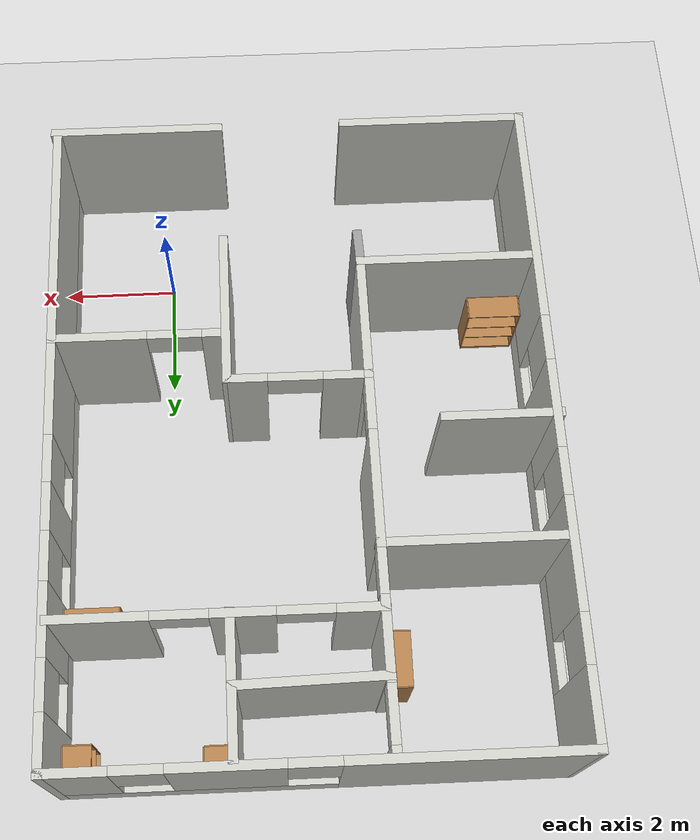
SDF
<sdf version="1.7">
 <world name="default">
  <light name="sun" type="directional">
   <pose>0 0 10 0 -0 0</pose>
   <diffuse>0.8 0.8 0.8 1</diffuse>
   <specular>0.2 0.2 0.2 1</specular>
   <attenuation>
    <range>1000</range>
    <constant>0.9</constant>
    <linear>0.01</linear>
    <quadratic>0.001</quadratic>
   </attenuation>
   <direction>-0.5 0.1 -0.9</direction>
   <spot><inner_angle>0</inner_angle><outer_angle>0</outer_angle><falloff>0</falloff></spot>
  </light>
  <model name="ground_plane">
   <static>1</static>
   <link name="link">
    <collision name="collision">
     <geometry><plane><normal>0 0 1</normal><size>100 100</size></plane></geometry>
     <surface><friction><ode><mu>100</mu><mu2>50</mu2></ode></friction></surface>
    </collision>
    <visual name="visual">
     <cast_shadows>0</cast_shadows>
     <geometry><plane><normal>0 0 1</normal><size>100 100</size></plane></geometry>
     <material>
      <script><uri>file://media/materials/scripts/gazebo.material</uri><name>Gazebo/Grey</name></script>
     </material>
    </visual>
   </link>
  </model>
  <gravity>0 0 -9.8</gravity>
  <magnetic_field>6e-06 2.3e-05 -4.2e-05</magnetic_field>
  <atmosphere type="adiabatic"/>
  <physics type="ode">
   <max_step_size>0.001</max_step_size>
   <real_time_factor>1</real_time_factor>
   <real_time_update_rate>1000</real_time_update_rate>
  </physics>
  <scene><ambient>0.4 0.4 0.4 1</ambient><background>0.7 0.7 0.7 1</background><shadows>1</shadows></scene>
  <audio><device>default</device></audio>
  <spherical_coordinates>
   <surface_model>EARTH_WGS84</surface_model>
   <latitude_deg>0</latitude_deg>
   <longitude_deg>0</longitude_deg>
   <elevation>0</elevation>
   <heading_deg>0</heading_deg>
  </spherical_coordinates>
  <model name="myhouse">
   <pose>-2.24113 3.59158 0 0 -0 0</pose>
   <link name="Wall_10">
    <collision name="Wall_10_Collision">
     <geometry><box><size>3.25 0.15 2.5</size></box></geometry>
     <pose>0 0 1.25 0 -0 0</pose>
    </collision>
    <visual name="Wall_10_Visual">
     <pose>0 0 1.25 0 -0 0</pose>
     <geometry><box><size>3.25 0.15 2.5</size></box></geometry>
     <material>
      <script><uri>file://media/materials/scripts/gazebo.material</uri><name>Gazebo/CeilingTiled</name></script>
      <ambient>1 1 1 1</ambient>
     </material>
     <meta><layer>0</layer></meta>
    </visual>
    <pose>-2.51699 -5.49294 0 0 -0 0</pose>
   </link>
   <link name="Wall_12">
    <collision name="Wall_12_Collision">
     <geometry><box><size>3 0.15 2.5</size></box></geometry>
     <pose>0 0 1.25 0 -0 0</pose>
    </collision>
    <visual name="Wall_12_Visual">
     <pose>0 0 1.25 0 -0 0</pose>
     <geometry><box><size>3 0.15 2.5</size></box></geometry>
     <material>
      <script><uri>file://media/materials/scripts/gazebo.material</uri><name>Gazebo/CeilingTiled</name></script>
      <ambient>1 1 1 1</ambient>
     </material>
     <meta><layer>0</layer></meta>
    </visual>
    <pose>2.67805 -5.49294 0 0 -0 0</pose>
   </link>
   <link name="Wall_16">
    <pose>0.009607 5.49294 0 0 -0 0</pose>
    <visual name="Wall_16_Visual_0">
     <pose>-2.22803 0 1.25 0 -0 0</pose>
     <geometry><box><size>3.79393 0.15 2.5</size></box></geometry>
     <material>
      <script><uri>file://media/materials/scripts/gazebo.material</uri><name>Gazebo/CeilingTiled</name></script>
      <ambient>1 1 1 1</ambient>
     </material>
     <meta><layer>0</layer></meta>
    </visual>
    <collision name="Wall_16_Collision_0">
     <geometry><box><size>3.79393 0.15 2.5</size></box></geometry>
     <pose>-2.22803 0 1.25 0 -0 0</pose>
    </collision>
    <visual name="Wall_16_Visual_1">
     <pose>1.89697 0 0.25 0 -0 0</pose>
     <geometry><box><size>4.45607 0.15 0.5</size></box></geometry>
     <material>
      <script><uri>file://media/materials/scripts/gazebo.material</uri><name>Gazebo/CeilingTiled</name></script>
      <ambient>1 1 1 1</ambient>
     </material>
     <meta><layer>0</layer></meta>
    </visual>
    <collision name="Wall_16_Collision_1">
     <geometry><box><size>4.45607 0.15 0.5</size></box></geometry>
     <pose>1.89697 0 0.25 0 -0 0</pose>
    </collision>
    <visual name="Wall_16_Visual_2">
     <pose>1.35904 0 1.5 0 -0 0</pose>
     <geometry><box><size>1.78022 0.15 2</size></box></geometry>
     <material>
      <script><uri>file://media/materials/scripts/gazebo.material</uri><name>Gazebo/CeilingTiled</name></script>
      <ambient>1 1 1 1</ambient>
     </material>
     <meta><layer>0</layer></meta>
    </visual>
    <collision name="Wall_16_Collision_2">
     <geometry><box><size>1.78022 0.15 2</size></box></geometry>
     <pose>1.35904 0 1.5 0 -0 0</pose>
    </collision>
    <visual name="Wall_16_Visual_3">
     <pose>3.58708 0 1.5 0 -0 0</pose>
     <geometry><box><size>1.07585 0.15 2</size></box></geometry>
     <material>
      <script><uri>file://media/materials/scripts/gazebo.material</uri><name>Gazebo/CeilingTiled</name></script>
      <ambient>1 1 1 1</ambient>
     </material>
     <meta><layer>0</layer></meta>
    </visual>
    <collision name="Wall_16_Collision_3">
     <geometry><box><size>1.07585 0.15 2</size></box></geometry>
     <pose>3.58708 0 1.5 0 -0 0</pose>
    </collision>
    <visual name="Wall_16_Visual_4">
     <pose>0.068933 0 1.9 0 -0 0</pose>
     <geometry><box><size>0.8 0.15 1.2</size></box></geometry>
     <material>
      <script><uri>file://media/materials/scripts/gazebo.material</uri><name>Gazebo/CeilingTiled</name></script>
      <ambient>1 1 1 1</ambient>
     </material>
     <meta><layer>0</layer></meta>
    </visual>
    <collision name="Wall_16_Collision_4">
     <geometry><box><size>0.8 0.15 1.2</size></box></geometry>
     <pose>0.068933 0 1.9 0 -0 0</pose>
    </collision>
    <visual name="Wall_16_Visual_5">
     <pose>2.64915 0 1.9 0 -0 0</pose>
     <geometry><box><size>0.8 0.15 1.2</size></box></geometry>
     <material>
      <script><uri>file://media/materials/scripts/gazebo.material</uri><name>Gazebo/CeilingTiled</name></script>
      <ambient>1 1 1 1</ambient>
     </material>
     <meta><layer>0</layer></meta>
    </visual>
    <collision name="Wall_16_Collision_5">
     <geometry><box><size>0.8 0.15 1.2</size></box></geometry>
     <pose>2.64915 0 1.9 0 -0 0</pose>
    </collision>
   </link>
   <link name="Wall_17">
    <pose>4.05961 0.067941 0 0 -0 -1.5708</pose>
    <visual name="Wall_17_Visual_0">
     <pose>-5.02252 0 1.25 0 -0 0</pose>
     <geometry><box><size>0.954962 0.15 2.5</size></box></geometry>
     <material>
      <script><uri>file://media/materials/scripts/gazebo.material</uri><name>Gazebo/CeilingTiled</name></script>
      <ambient>1 1 1 1</ambient>
     </material>
     <meta><layer>0</layer></meta>
    </visual>
    <collision name="Wall_17_Collision_0">
     <geometry><box><size>0.954962 0.15 2.5</size></box></geometry>
     <pose>-5.02252 0 1.25 0 -0 0</pose>
    </collision>
    <visual name="Wall_17_Visual_1">
     <pose>0.477481 0 0.25 0 -0 0</pose>
     <geometry><box><size>10.045 0.15 0.5</size></box></geometry>
     <material>
      <script><uri>file://media/materials/scripts/gazebo.material</uri><name>Gazebo/CeilingTiled</name></script>
      <ambient>1 1 1 1</ambient>
     </material>
     <meta><layer>0</layer></meta>
    </visual>
    <collision name="Wall_17_Collision_1">
     <geometry><box><size>10.045 0.15 0.5</size></box></geometry>
     <pose>0.477481 0 0.25 0 -0 0</pose>
    </collision>
    <visual name="Wall_17_Visual_2">
     <pose>-3.16083 0 1.5 0 -0 0</pose>
     <geometry><box><size>1.16841 0.15 2</size></box></geometry>
     <material>
      <script><uri>file://media/materials/scripts/gazebo.material</uri><name>Gazebo/CeilingTiled</name></script>
      <ambient>1 1 1 1</ambient>
     </material>
     <meta><layer>0</layer></meta>
    </visual>
    <collision name="Wall_17_Collision_2">
     <geometry><box><size>1.16841 0.15 2</size></box></geometry>
     <pose>-3.16083 0 1.5 0 -0 0</pose>
    </collision>
    <visual name="Wall_17_Visual_3">
     <pose>-1.37862 0 1.5 0 -0 0</pose>
     <geometry><box><size>0.796012 0.15 2</size></box></geometry>
     <material>
      <script><uri>file://media/materials/scripts/gazebo.material</uri><name>Gazebo/CeilingTiled</name></script>
      <ambient>1 1 1 1</ambient>
     </material>
     <meta><layer>0</layer></meta>
    </visual>
    <collision name="Wall_17_Collision_3">
     <geometry><box><size>0.796012 0.15 2</size></box></geometry>
     <pose>-1.37862 0 1.5 0 -0 0</pose>
    </collision>
    <visual name="Wall_17_Visual_4">
     <pose>2.65969 0 1.5 0 -0 0</pose>
     <geometry><box><size>5.68061 0.15 2</size></box></geometry>
     <material>
      <script><uri>file://media/materials/scripts/gazebo.material</uri><name>Gazebo/CeilingTiled</name></script>
      <ambient>1 1 1 1</ambient>
     </material>
     <meta><layer>0</layer></meta>
    </visual>
    <collision name="Wall_17_Collision_4">
     <geometry><box><size>5.68061 0.15 2</size></box></geometry>
     <pose>2.65969 0 1.5 0 -0 0</pose>
    </collision>
    <visual name="Wall_17_Visual_5">
     <pose>-4.14504 0 1.9 0 -0 0</pose>
     <geometry><box><size>0.8 0.15 1.2</size></box></geometry>
     <material>
      <script><uri>file://media/materials/scripts/gazebo.material</uri><name>Gazebo/CeilingTiled</name></script>
      <ambient>1 1 1 1</ambient>
     </material>
     <meta><layer>0</layer></meta>
    </visual>
    <collision name="Wall_17_Collision_5">
     <geometry><box><size>0.8 0.15 1.2</size></box></geometry>
     <pose>-4.14504 0 1.9 0 -0 0</pose>
    </collision>
    <visual name="Wall_17_Visual_6">
     <pose>-2.17662 0 1.9 0 -0 0</pose>
     <geometry><box><size>0.8 0.15 1.2</size></box></geometry>
     <material>
      <script><uri>file://media/materials/scripts/gazebo.material</uri><name>Gazebo/CeilingTiled</name></script>
      <ambient>1 1 1 1</ambient>
     </material>
     <meta><layer>0</layer></meta>
    </visual>
    <collision name="Wall_17_Collision_6">
     <geometry><box><size>0.8 0.15 1.2</size></box></geometry>
     <pose>-2.17662 0 1.9 0 -0 0</pose>
    </collision>
    <visual name="Wall_17_Visual_7">
     <pose>-0.580611 0 1.9 0 -0 0</pose>
     <geometry><box><size>0.8 0.15 1.2</size></box></geometry>
     <material>
      <script><uri>file://media/materials/scripts/gazebo.material</uri><name>Gazebo/CeilingTiled</name></script>
      <ambient>1 1 1 1</ambient>
     </material>
     <meta><layer>0</layer></meta>
    </visual>
    <collision name="Wall_17_Collision_7">
     <geometry><box><size>0.8 0.15 1.2</size></box></geometry>
     <pose>-0.580611 0 1.9 0 -0 0</pose>
    </collision>
   </link>
   <link name="Wall_19">
    <collision name="Wall_19_Collision">
     <geometry><box><size>3.12681 0.15 2.5</size></box></geometry>
     <pose>0 0 1.25 0 -0 0</pose>
    </collision>
    <visual name="Wall_19_Visual">
     <pose>0 0 1.25 0 -0 0</pose>
     <geometry><box><size>3.12681 0.15 2.5</size></box></geometry>
     <material>
      <script><uri>file://media/materials/scripts/gazebo.material</uri><name>Gazebo/CeilingTiled</name></script>
      <ambient>1 1 1 1</ambient>
     </material>
     <meta><layer>0</layer></meta>
    </visual>
    <pose>-2.57442 -2.6922 0 0 -0 0</pose>
   </link>
   <link name="Wall_21">
    <collision name="Wall_21_Collision">
     <geometry><box><size>2.25 0.15 2.5</size></box></geometry>
     <pose>0 0 1.25 0 -0 0</pose>
    </collision>
    <visual name="Wall_21_Visual">
     <pose>0 0 1.25 0 -0 0</pose>
     <geometry><box><size>2.25 0.15 2.5</size></box></geometry>
     <material>
      <script><uri>file://media/materials/scripts/gazebo.material</uri><name>Gazebo/CeilingTiled</name></script>
      <ambient>1 1 1 1</ambient>
     </material>
     <meta><layer>0</layer></meta>
    </visual>
    <pose>-1.08601 -1.6422 0 0 -0 1.5708</pose>
   </link>
   <link name="Wall_23">
    <collision name="Wall_23_Collision">
     <geometry><box><size>2 0.15 2.5</size></box></geometry>
     <pose>0 0 1.25 0 -0 0</pose>
    </collision>
    <visual name="Wall_23_Visual">
     <pose>0 0 1.25 0 -0 0</pose>
     <geometry><box><size>2 0.15 2.5</size></box></geometry>
     <material>
      <script><uri>file://media/materials/scripts/gazebo.material</uri><name>Gazebo/CeilingTiled</name></script>
      <ambient>1 1 1 1</ambient>
     </material>
     <meta><layer>0</layer></meta>
    </visual>
    <pose>-3.17805 0.204152 0 0 -0 0</pose>
   </link>
   <link name="Wall_25">
    <collision name="Wall_25_Collision">
     <geometry><box><size>3 0.15 2.5</size></box></geometry>
     <pose>0 0 1.25 0 -0 0</pose>
    </collision>
    <visual name="Wall_25_Visual">
     <pose>0 0 1.25 0 -0 0</pose>
     <geometry><box><size>3 0.15 2.5</size></box></geometry>
     <material>
      <script><uri>file://media/materials/scripts/gazebo.material</uri><name>Gazebo/CeilingTiled</name></script>
      <ambient>1 1 1 1</ambient>
     </material>
     <meta><layer>0</layer></meta>
    </visual>
    <pose>-2.51101 2.25574 0 0 -0 0</pose>
   </link>
   <link name="Wall_27">
    <pose>-1.08601 0.831767 0 0 -0 -1.5708</pose>
    <visual name="Wall_27_Visual_0">
     <pose>-0.519882 0 1.25 0 -0 0</pose>
     <geometry><box><size>1.95817 0.15 2.5</size></box></geometry>
     <material>
      <script><uri>file://media/materials/scripts/gazebo.material</uri><name>Gazebo/CeilingTiled</name></script>
      <ambient>1 1 1 1</ambient>
     </material>
     <meta><layer>0</layer></meta>
    </visual>
    <collision name="Wall_27_Collision_0">
     <geometry><box><size>1.95817 0.15 2.5</size></box></geometry>
     <pose>-0.519882 0 1.25 0 -0 0</pose>
    </collision>
    <visual name="Wall_27_Visual_1">
     <pose>1.42909 0 1.25 0 -0 0</pose>
     <geometry><box><size>0.139764 0.15 2.5</size></box></geometry>
     <material>
      <script><uri>file://media/materials/scripts/gazebo.material</uri><name>Gazebo/CeilingTiled</name></script>
      <ambient>1 1 1 1</ambient>
     </material>
     <meta><layer>0</layer></meta>
    </visual>
    <collision name="Wall_27_Collision_1">
     <geometry><box><size>0.139764 0.15 2.5</size></box></geometry>
     <pose>1.42909 0 1.25 0 -0 0</pose>
    </collision>
    <visual name="Wall_27_Visual_2">
     <pose>0.909205 0 2.25 0 -0 0</pose>
     <geometry><box><size>0.9 0.15 0.5</size></box></geometry>
     <material>
      <script><uri>file://media/materials/scripts/gazebo.material</uri><name>Gazebo/CeilingTiled</name></script>
      <ambient>1 1 1 1</ambient>
     </material>
     <meta><layer>0</layer></meta>
    </visual>
    <collision name="Wall_27_Collision_2">
     <geometry><box><size>0.9 0.15 0.5</size></box></geometry>
     <pose>0.909205 0 2.25 0 -0 0</pose>
    </collision>
   </link>
   <link name="Wall_29">
    <collision name="Wall_29_Collision">
     <geometry><box><size>0.67334 0.15 2.5</size></box></geometry>
     <pose>0 0 1.25 0 -0 0</pose>
    </collision>
    <visual name="Wall_29_Visual">
     <pose>0 0 1.25 0 -0 0</pose>
     <geometry><box><size>0.67334 0.15 2.5</size></box></geometry>
     <material>
      <script><uri>file://media/materials/scripts/gazebo.material</uri><name>Gazebo/Grey</name></script>
      <ambient>1 1 1 1</ambient>
     </material>
     <meta><layer>0</layer></meta>
    </visual>
    <pose>-1.07595 -2.95368 0 0 -0 -1.53235</pose>
   </link>
   <link name="Wall_31">
    <pose>0.060463 -0.596297 0 0 -0 -0.003571</pose>
    <visual name="Wall_31_Visual_0">
     <pose>-0.815584 0 1.25 0 -0 0</pose>
     <geometry><box><size>0.811794 0.15 2.5</size></box></geometry>
     <material>
      <script><uri>file://media/materials/scripts/gazebo.material</uri><name>Gazebo/CeilingTiled</name></script>
      <ambient>1 1 1 1</ambient>
     </material>
     <meta><layer>0</layer></meta>
    </visual>
    <collision name="Wall_31_Collision_0">
     <geometry><box><size>0.811794 0.15 2.5</size></box></geometry>
     <pose>-0.815584 0 1.25 0 -0 0</pose>
    </collision>
    <visual name="Wall_31_Visual_1">
     <pose>0.855897 0 1.25 0 -0 0</pose>
     <geometry><box><size>0.731168 0.15 2.5</size></box></geometry>
     <material>
      <script><uri>file://media/materials/scripts/gazebo.material</uri><name>Gazebo/CeilingTiled</name></script>
      <ambient>1 1 1 1</ambient>
     </material>
     <meta><layer>0</layer></meta>
    </visual>
    <collision name="Wall_31_Collision_1">
     <geometry><box><size>0.731168 0.15 2.5</size></box></geometry>
     <pose>0.855897 0 1.25 0 -0 0</pose>
    </collision>
    <visual name="Wall_31_Visual_2">
     <pose>0.040313 0 2.25 0 -0 0</pose>
     <geometry><box><size>0.9 0.15 0.5</size></box></geometry>
     <material>
      <script><uri>file://media/materials/scripts/gazebo.material</uri><name>Gazebo/CeilingTiled</name></script>
      <ambient>1 1 1 1</ambient>
     </material>
     <meta><layer>0</layer></meta>
    </visual>
    <collision name="Wall_31_Collision_2">
     <geometry><box><size>0.9 0.15 0.5</size></box></geometry>
     <pose>0.040313 0 2.25 0 -0 0</pose>
    </collision>
   </link>
   <link name="Wall_32">
    <collision name="Wall_32_Collision">
     <geometry><box><size>2.75 0.15 2.5</size></box></geometry>
     <pose>0 0 1.25 0 -0 0</pose>
    </collision>
    <visual name="Wall_32_Visual">
     <pose>0 0 1.25 0 -0 0</pose>
     <geometry><box><size>2.75 0.15 2.5</size></box></geometry>
     <material>
      <script><uri>file://media/materials/scripts/gazebo.material</uri><name>Gazebo/CeilingTiled</name></script>
      <ambient>1 1 1 1</ambient>
     </material>
     <meta><layer>0</layer></meta>
    </visual>
    <pose>1.20694 -1.90039 0 0 -0 -1.5708</pose>
   </link>
   <link name="Wall_35">
    <pose>2.63194 -1.44516 0 0 -0 0</pose>
    <visual name="Wall_35_Visual_0">
     <pose>-1.26511 0 1.25 0 -0 0</pose>
     <geometry><box><size>0.46977 0.15 2.5</size></box></geometry>
     <material>
      <script><uri>file://media/materials/scripts/gazebo.material</uri><name>Gazebo/CeilingTiled</name></script>
      <ambient>1 1 1 1</ambient>
     </material>
     <meta><layer>0</layer></meta>
    </visual>
    <collision name="Wall_35_Collision_0">
     <geometry><box><size>0.46977 0.15 2.5</size></box></geometry>
     <pose>-1.26511 0 1.25 0 -0 0</pose>
    </collision>
    <visual name="Wall_35_Visual_1">
     <pose>0.684885 0 1.25 0 -0 0</pose>
     <geometry><box><size>1.63023 0.15 2.5</size></box></geometry>
     <material>
      <script><uri>file://media/materials/scripts/gazebo.material</uri><name>Gazebo/CeilingTiled</name></script>
      <ambient>1 1 1 1</ambient>
     </material>
     <meta><layer>0</layer></meta>
    </visual>
    <collision name="Wall_35_Collision_1">
     <geometry><box><size>1.63023 0.15 2.5</size></box></geometry>
     <pose>0.684885 0 1.25 0 -0 0</pose>
    </collision>
    <visual name="Wall_35_Visual_2">
     <pose>-0.58023 0 2.25 0 -0 0</pose>
     <geometry><box><size>0.9 0.15 0.5</size></box></geometry>
     <material>
      <script><uri>file://media/materials/scripts/gazebo.material</uri><name>Gazebo/CeilingTiled</name></script>
      <ambient>1 1 1 1</ambient>
     </material>
     <meta><layer>0</layer></meta>
    </visual>
    <collision name="Wall_35_Collision_2">
     <geometry><box><size>0.9 0.15 0.5</size></box></geometry>
     <pose>-0.58023 0 2.25 0 -0 0</pose>
    </collision>
   </link>
   <link name="Wall_37">
    <pose>-1.08894 3.87276 0 0 -0 -1.56899</pose>
    <visual name="Wall_37_Visual_0">
     <pose>-1.56033 0 1.25 0 -0 0</pose>
     <geometry><box><size>0.263404 0.15 2.5</size></box></geometry>
     <material>
      <script><uri>file://media/materials/scripts/gazebo.material</uri><name>Gazebo/CeilingTiled</name></script>
      <ambient>1 1 1 1</ambient>
     </material>
     <meta><layer>0</layer></meta>
    </visual>
    <collision name="Wall_37_Collision_0">
     <geometry><box><size>0.263404 0.15 2.5</size></box></geometry>
     <pose>-1.56033 0 1.25 0 -0 0</pose>
    </collision>
    <visual name="Wall_37_Visual_1">
     <pose>0.138557 0 1.25 0 -0 0</pose>
     <geometry><box><size>1.33437 0.15 2.5</size></box></geometry>
     <material>
      <script><uri>file://media/materials/scripts/gazebo.material</uri><name>Gazebo/CeilingTiled</name></script>
      <ambient>1 1 1 1</ambient>
     </material>
     <meta><layer>0</layer></meta>
    </visual>
    <collision name="Wall_37_Collision_1">
     <geometry><box><size>1.33437 0.15 2.5</size></box></geometry>
     <pose>0.138557 0 1.25 0 -0 0</pose>
    </collision>
    <visual name="Wall_37_Visual_2">
     <pose>-0.978625 0 2.25 0 -0 0</pose>
     <geometry><box><size>0.9 0.15 0.5</size></box></geometry>
     <material>
      <script><uri>file://media/materials/scripts/gazebo.material</uri><name>Gazebo/CeilingTiled</name></script>
      <ambient>1 1 1 1</ambient>
     </material>
     <meta><layer>0</layer></meta>
    </visual>
    <collision name="Wall_37_Collision_2">
     <geometry><box><size>0.9 0.15 0.5</size></box></geometry>
     <pose>-0.978625 0 2.25 0 -0 0</pose>
    </collision>
    <visual name="Wall_37_Visual_3">
     <pose>1.24888 0 2.25 0 -0 0</pose>
     <geometry><box><size>0.886289 0.15 0.5</size></box></geometry>
     <material>
      <script><uri>file://media/materials/scripts/gazebo.material</uri><name>Gazebo/CeilingTiled</name></script>
      <ambient>1 1 1 1</ambient>
     </material>
     <meta><layer>0</layer></meta>
    </visual>
    <collision name="Wall_37_Collision_3">
     <geometry><box><size>0.886289 0.15 0.5</size></box></geometry>
     <pose>1.24888 0 2.25 0 -0 0</pose>
    </collision>
   </link>
   <link name="Wall_39">
    <collision name="Wall_39_Collision">
     <geometry><box><size>2.50136 0.15 2.5</size></box></geometry>
     <pose>0 0 1.25 0 -0 0</pose>
    </collision>
    <visual name="Wall_39_Visual">
     <pose>0 0 1.25 0 -0 0</pose>
     <geometry><box><size>2.50136 0.15 2.5</size></box></geometry>
     <material>
      <script><uri>file://media/materials/scripts/gazebo.material</uri><name>Gazebo/CeilingTiled</name></script>
      <ambient>1 1 1 1</ambient>
     </material>
     <meta><layer>0</layer></meta>
    </visual>
    <pose>0.083364 4.31942 0 0 -0 0.022661</pose>
   </link>
   <link name="Wall_40">
    <collision name="Wall_40_Collision">
     <geometry><box><size>1.1968 0.15 2.5</size></box></geometry>
     <pose>0 0 1.25 0 -0 0</pose>
    </collision>
    <visual name="Wall_40_Visual">
     <pose>0 0 1.25 0 -0 0</pose>
     <geometry><box><size>1.1968 0.15 2.5</size></box></geometry>
     <material>
      <script><uri>file://media/materials/scripts/gazebo.material</uri><name>Gazebo/CeilingTiled</name></script>
      <ambient>1 1 1 1</ambient>
     </material>
     <meta><layer>0</layer></meta>
    </visual>
    <pose>1.25836 4.86942 0 0 -0 1.57124</pose>
   </link>
   <link name="Wall_46">
    <pose>1.45813 3.25537 0 0 -0 0</pose>
    <visual name="Wall_46_Visual_0">
     <pose>-2.214 0 1.25 0 -0 0</pose>
     <geometry><box><size>0.822009 0.15 2.5</size></box></geometry>
     <material>
      <script><uri>file://media/materials/scripts/gazebo.material</uri><name>Gazebo/CeilingTiled</name></script>
      <ambient>1 1 1 1</ambient>
     </material>
     <meta><layer>0</layer></meta>
    </visual>
    <collision name="Wall_46_Collision_0">
     <geometry><box><size>0.822009 0.15 2.5</size></box></geometry>
     <pose>-2.214 0 1.25 0 -0 0</pose>
    </collision>
    <visual name="Wall_46_Visual_1">
     <pose>-0.395384 0 1.25 0 -0 0</pose>
     <geometry><box><size>1.01521 0.15 2.5</size></box></geometry>
     <material>
      <script><uri>file://media/materials/scripts/gazebo.material</uri><name>Gazebo/CeilingTiled</name></script>
      <ambient>1 1 1 1</ambient>
     </material>
     <meta><layer>0</layer></meta>
    </visual>
    <collision name="Wall_46_Collision_1">
     <geometry><box><size>1.01521 0.15 2.5</size></box></geometry>
     <pose>-0.395384 0 1.25 0 -0 0</pose>
    </collision>
    <visual name="Wall_46_Visual_2">
     <pose>1.81861 0 1.25 0 -0 0</pose>
     <geometry><box><size>1.61278 0.15 2.5</size></box></geometry>
     <material>
      <script><uri>file://media/materials/scripts/gazebo.material</uri><name>Gazebo/CeilingTiled</name></script>
      <ambient>1 1 1 1</ambient>
     </material>
     <meta><layer>0</layer></meta>
    </visual>
    <collision name="Wall_46_Collision_2">
     <geometry><box><size>1.61278 0.15 2.5</size></box></geometry>
     <pose>1.81861 0 1.25 0 -0 0</pose>
    </collision>
    <visual name="Wall_46_Visual_3">
     <pose>-1.35299 0 2.25 0 -0 0</pose>
     <geometry><box><size>0.9 0.15 0.5</size></box></geometry>
     <material>
      <script><uri>file://media/materials/scripts/gazebo.material</uri><name>Gazebo/CeilingTiled</name></script>
      <ambient>1 1 1 1</ambient>
     </material>
     <meta><layer>0</layer></meta>
    </visual>
    <collision name="Wall_46_Collision_3">
     <geometry><box><size>0.9 0.15 0.5</size></box></geometry>
     <pose>-1.35299 0 2.25 0 -0 0</pose>
    </collision>
    <visual name="Wall_46_Visual_4">
     <pose>0.562223 0 2.25 0 -0 0</pose>
     <geometry><box><size>0.9 0.15 0.5</size></box></geometry>
     <material>
      <script><uri>file://media/materials/scripts/gazebo.material</uri><name>Gazebo/CeilingTiled</name></script>
      <ambient>1 1 1 1</ambient>
     </material>
     <meta><layer>0</layer></meta>
    </visual>
    <collision name="Wall_46_Collision_4">
     <geometry><box><size>0.9 0.15 0.5</size></box></geometry>
     <pose>0.562223 0 2.25 0 -0 0</pose>
    </collision>
   </link>
   <link name="Wall_48">
    <collision name="Wall_48_Collision">
     <geometry><box><size>1.25 0.15 2.5</size></box></geometry>
     <pose>0 0 1.25 0 -0 0</pose>
    </collision>
    <visual name="Wall_48_Visual">
     <pose>0 0 1.25 0 -0 0</pose>
     <geometry><box><size>1.25 0.15 2.5</size></box></geometry>
     <material>
      <script><uri>file://media/materials/scripts/gazebo.material</uri><name>Gazebo/CeilingTiled</name></script>
      <ambient>1 1 1 1</ambient>
     </material>
     <meta><layer>0</layer></meta>
    </visual>
    <pose>1.2586 3.79605 0 0 -0 -1.5708</pose>
   </link>
   <link name="Wall_9">
    <pose>-4.05369 -0 0 0 -0 -1.57322</pose>
    <visual name="Wall_9_Visual_0">
     <pose>-4.91754 0 1.25 0 -0 0</pose>
     <geometry><box><size>1.30083 0.15 2.5</size></box></geometry>
     <material>
      <script><uri>file://media/materials/scripts/gazebo.material</uri><name>Gazebo/CeilingTiled</name></script>
      <ambient>1 1 1 1</ambient>
     </material>
     <meta><layer>0</layer></meta>
    </visual>
    <collision name="Wall_9_Collision_0">
     <geometry><box><size>1.30083 0.15 2.5</size></box></geometry>
     <pose>-4.91754 0 1.25 0 -0 0</pose>
    </collision>
    <visual name="Wall_9_Visual_1">
     <pose>0.650417 0 0.25 0 -0 0</pose>
     <geometry><box><size>9.83508 0.15 0.5</size></box></geometry>
     <material>
      <script><uri>file://media/materials/scripts/gazebo.material</uri><name>Gazebo/CeilingTiled</name></script>
      <ambient>1 1 1 1</ambient>
     </material>
     <meta><layer>0</layer></meta>
    </visual>
    <collision name="Wall_9_Collision_1">
     <geometry><box><size>9.83508 0.15 0.5</size></box></geometry>
     <pose>0.650417 0 0.25 0 -0 0</pose>
    </collision>
    <visual name="Wall_9_Visual_2">
     <pose>-2.53734 0 1.5 0 -0 0</pose>
     <geometry><box><size>1.85956 0.15 2</size></box></geometry>
     <material>
      <script><uri>file://media/materials/scripts/gazebo.material</uri><name>Gazebo/CeilingTiled</name></script>
      <ambient>1 1 1 1</ambient>
     </material>
     <meta><layer>0</layer></meta>
    </visual>
    <collision name="Wall_9_Collision_2">
     <geometry><box><size>1.85956 0.15 2</size></box></geometry>
     <pose>-2.53734 0 1.5 0 -0 0</pose>
    </collision>
    <visual name="Wall_9_Visual_3">
     <pose>-0.037157 0 1.5 0 -0 0</pose>
     <geometry><box><size>1.54081 0.15 2</size></box></geometry>
     <material>
      <script><uri>file://media/materials/scripts/gazebo.material</uri><name>Gazebo/CeilingTiled</name></script>
      <ambient>1 1 1 1</ambient>
     </material>
     <meta><layer>0</layer></meta>
    </visual>
    <collision name="Wall_9_Collision_3">
     <geometry><box><size>1.54081 0.15 2</size></box></geometry>
     <pose>-0.037157 0 1.5 0 -0 0</pose>
    </collision>
    <visual name="Wall_9_Visual_4">
     <pose>3.5506 0 1.5 0 -0 0</pose>
     <geometry><box><size>4.03471 0.15 2</size></box></geometry>
     <material>
      <script><uri>file://media/materials/scripts/gazebo.material</uri><name>Gazebo/CeilingTiled</name></script>
      <ambient>1 1 1 1</ambient>
     </material>
     <meta><layer>0</layer></meta>
    </visual>
    <collision name="Wall_9_Collision_4">
     <geometry><box><size>4.03471 0.15 2</size></box></geometry>
     <pose>3.5506 0 1.5 0 -0 0</pose>
    </collision>
    <visual name="Wall_9_Visual_5">
     <pose>-3.86712 0 1.9 0 -0 0</pose>
     <geometry><box><size>0.8 0.15 1.2</size></box></geometry>
     <material>
      <script><uri>file://media/materials/scripts/gazebo.material</uri><name>Gazebo/CeilingTiled</name></script>
      <ambient>1 1 1 1</ambient>
     </material>
     <meta><layer>0</layer></meta>
    </visual>
    <collision name="Wall_9_Collision_5">
     <geometry><box><size>0.8 0.15 1.2</size></box></geometry>
     <pose>-3.86712 0 1.9 0 -0 0</pose>
    </collision>
    <visual name="Wall_9_Visual_6">
     <pose>-1.20756 0 1.9 0 -0 0</pose>
     <geometry><box><size>0.8 0.15 1.2</size></box></geometry>
     <material>
      <script><uri>file://media/materials/scripts/gazebo.material</uri><name>Gazebo/CeilingTiled</name></script>
      <ambient>1 1 1 1</ambient>
     </material>
     <meta><layer>0</layer></meta>
    </visual>
    <collision name="Wall_9_Collision_6">
     <geometry><box><size>0.8 0.15 1.2</size></box></geometry>
     <pose>-1.20756 0 1.9 0 -0 0</pose>
    </collision>
    <visual name="Wall_9_Visual_7">
     <pose>1.13325 0 1.9 0 -0 0</pose>
     <geometry><box><size>0.8 0.15 1.2</size></box></geometry>
     <material>
      <script><uri>file://media/materials/scripts/gazebo.material</uri><name>Gazebo/CeilingTiled</name></script>
      <ambient>1 1 1 1</ambient>
     </material>
     <meta><layer>0</layer></meta>
    </visual>
    <collision name="Wall_9_Collision_7">
     <geometry><box><size>0.8 0.15 1.2</size></box></geometry>
     <pose>1.13325 0 1.9 0 -0 0</pose>
    </collision>
   </link>
   <link name="Window_6">
    <collision name="Window_6_Collision">
     <geometry><box><size>0.8 0.17 0.8</size></box></geometry>
     <pose>0 0 0.4 0 -0 0</pose>
    </collision>
    <visual name="Window_6_Visual">
     <pose>0 0 0.4 0 -0 0</pose>
     <geometry><box><size>0.8 0.17 0.8</size></box></geometry>
     <material>
      <script><uri>file://media/materials/scripts/gazebo.material</uri><name>Gazebo/Grey</name></script>
     </material>
    </visual>
    <pose>-2.50168 5.35679 0.5 0 -0 0</pose>
   </link>
   <static>1</static>
  </model>
  <model name="cabinet">
   <static>1</static>
   <link name="cabinet_bottom_plate">
    <inertial>
     <pose>0 0 -1 0 -0 0</pose>
     <inertia><ixx>2.05</ixx><ixy>0</ixy><ixz>0</ixz><iyy>2.05</iyy><iyz>0</iyz><izz>2.05</izz></inertia>
     <mass>25</mass>
    </inertial>
    <collision name="cabinet_bottom_plate_geom">
     <pose>0 0 0.01 0 -0 0</pose>
     <geometry><box><size>0.45 0.45 0.02</size></box></geometry>
    </collision>
    <visual name="cabinet_bottom_plate_geom_visual">
     <pose>0 0 0.01 0 -0 0</pose>
     <geometry><box><size>0.45 0.45 0.02</size></box></geometry>
     <material>
      <script><uri>file://media/materials/scripts/gazebo.material</uri><name>Gazebo/Wood</name></script>
     </material>
    </visual>
    <collision name="cabinet_bottom_plate_geom_cabinet_back_plate">
     <pose>0.235 0 0.51 0 -0 0</pose>
     <geometry><box><size>0.02 0.45 1.02</size></box></geometry>
    </collision>
    <visual name="cabinet_bottom_plate_geom_cabinet_back_plate_visual">
     <pose>0.235 0 0.51 0 -0 0</pose>
     <geometry><box><size>0.02 0.45 1.02</size></box></geometry>
     <material>
      <script><uri>file://media/materials/scripts/gazebo.material</uri><name>Gazebo/Wood</name></script>
     </material>
    </visual>
    <collision name="cabinet_bottom_plate_geom_cabinet_left_plate">
     <pose>0 0.235 0.51 0 -0 0</pose>
     <geometry><box><size>0.45 0.02 1.02</size></box></geometry>
    </collision>
    <visual name="cabinet_bottom_plate_geom_cabinet_left_plate_visual">
     <pose>0 0.235 0.51 0 -0 0</pose>
     <geometry><box><size>0.45 0.02 1.02</size></box></geometry>
     <material>
      <script><uri>file://media/materials/scripts/gazebo.material</uri><name>Gazebo/Wood</name></script>
     </material>
    </visual>
    <collision name="cabinet_bottom_plate_geom_cabinet_middle_plate">
     <pose>0 0 0.51 0 -0 0</pose>
     <geometry><box><size>0.45 0.45 0.02</size></box></geometry>
    </collision>
    <visual name="cabinet_bottom_plate_geom_cabinet_middle_plate_visual">
     <pose>0 0 0.51 0 -0 0</pose>
     <geometry><box><size>0.45 0.45 0.02</size></box></geometry>
     <material>
      <script><uri>file://media/materials/scripts/gazebo.material</uri><name>Gazebo/Wood</name></script>
     </material>
    </visual>
    <collision name="cabinet_bottom_plate_geom_cabinet_right_plate">
     <pose>0 -0.235 0.51 0 -0 0</pose>
     <geometry><box><size>0.45 0.02 1.02</size></box></geometry>
    </collision>
    <visual name="cabinet_bottom_plate_geom_cabinet_right_plate_visual">
     <pose>0 -0.235 0.51 0 -0 0</pose>
     <geometry><box><size>0.45 0.02 1.02</size></box></geometry>
     <material>
      <script><uri>file://media/materials/scripts/gazebo.material</uri><name>Gazebo/Wood</name></script>
     </material>
    </visual>
    <collision name="cabinet_bottom_plate_geom_cabinet_top_plate">
     <pose>0 0 1.01 0 -0 0</pose>
     <geometry><box><size>0.45 0.45 0.02</size></box></geometry>
    </collision>
    <visual name="cabinet_bottom_plate_geom_cabinet_top_plate_visual">
     <pose>0 0 1.01 0 -0 0</pose>
     <geometry><box><size>0.45 0.45 0.02</size></box></geometry>
     <material>
      <script><uri>file://media/materials/scripts/gazebo.material</uri><name>Gazebo/Wood</name></script>
     </material>
    </visual>
   </link>
   <pose>-5.99939 3.46918 0 0 -0 1.62908</pose>
  </model>
  <model name="bookshelf">
   <static>1</static>
   <link name="link">
    <inertial><mass>1</mass></inertial>
    <collision name="back">
     <pose>0 0.005 0.6 0 -0 0</pose>
     <geometry><box><size>0.9 0.01 1.2</size></box></geometry>
    </collision>
    <visual name="visual1">
     <pose>0 0.005 0.6 0 -0 0</pose>
     <geometry><box><size>0.9 0.01 1.2</size></box></geometry>
     <material>
      <script><uri>file://media/materials/scripts/gazebo.material</uri><name>Gazebo/Wood</name></script>
     </material>
    </visual>
    <collision name="left_side">
     <pose>0.45 -0.195 0.6 0 -0 0</pose>
     <geometry><box><size>0.02 0.4 1.2</size></box></geometry>
    </collision>
    <visual name="visual2">
     <pose>0.45 -0.195 0.6 0 -0 0</pose>
     <geometry><box><size>0.02 0.4 1.2</size></box></geometry>
     <material>
      <script><uri>file://media/materials/scripts/gazebo.material</uri><name>Gazebo/Wood</name></script>
     </material>
    </visual>
    <collision name="right_side">
     <pose>-0.45 -0.195 0.6 0 -0 0</pose>
     <geometry><box><size>0.02 0.4 1.2</size></box></geometry>
    </collision>
    <visual name="visual3">
     <pose>-0.45 -0.195 0.6 0 -0 0</pose>
     <geometry><box><size>0.02 0.4 1.2</size></box></geometry>
     <material>
      <script><uri>file://media/materials/scripts/gazebo.material</uri><name>Gazebo/Wood</name></script>
     </material>
    </visual>
    <collision name="bottom">
     <pose>0 -0.195 0.03 0 -0 0</pose>
     <geometry><box><size>0.88 0.4 0.06</size></box></geometry>
    </collision>
    <visual name="visual4">
     <pose>0 -0.195 0.03 0 -0 0</pose>
     <geometry><box><size>0.88 0.4 0.06</size></box></geometry>
     <material>
      <script><uri>file://media/materials/scripts/gazebo.material</uri><name>Gazebo/Wood</name></script>
     </material>
    </visual>
    <collision name="top">
     <pose>0 -0.195 1.19 0 -0 0</pose>
     <geometry><box><size>0.88 0.4 0.02</size></box></geometry>
    </collision>
    <visual name="visual5">
     <pose>0 -0.195 1.19 0 -0 0</pose>
     <geometry><box><size>0.88 0.4 0.02</size></box></geometry>
     <material>
      <script><uri>file://media/materials/scripts/gazebo.material</uri><name>Gazebo/Wood</name></script>
     </material>
    </visual>
    <collision name="low_shelf">
     <pose>0 -0.195 0.43 0 -0 0</pose>
     <geometry><box><size>0.88 0.4 0.02</size></box></geometry>
    </collision>
    <visual name="visual6">
     <pose>0 -0.195 0.43 0 -0 0</pose>
     <geometry><box><size>0.88 0.4 0.02</size></box></geometry>
     <material>
      <script><uri>file://media/materials/scripts/gazebo.material</uri><name>Gazebo/Wood</name></script>
     </material>
    </visual>
    <collision name="high_shelf">
     <pose>0 -0.195 0.8 0 -0 0</pose>
     <geometry><box><size>0.88 0.4 0.02</size></box></geometry>
    </collision>
    <visual name="visual7">
     <pose>0 -0.195 0.8 0 -0 0</pose>
     <geometry><box><size>0.88 0.4 0.02</size></box></geometry>
     <material>
      <script><uri>file://media/materials/scripts/gazebo.material</uri><name>Gazebo/Wood</name></script>
     </material>
    </visual>
   </link>
   <pose>-5.73413 0.985407 0 0 -0 3.13906</pose>
  </model>
  <model name="cabinet_0">
   <static>1</static>
   <link name="cabinet_bottom_plate">
    <inertial>
     <pose>0 0 -1 0 -0 0</pose>
     <inertia><ixx>2.05</ixx><ixy>0</ixy><ixz>0</ixz><iyy>2.05</iyy><iyz>0</iyz><izz>2.05</izz></inertia>
     <mass>25</mass>
    </inertial>
    <collision name="cabinet_bottom_plate_geom">
     <pose>0 0 0.01 0 -0 0</pose>
     <geometry><box><size>0.45 0.45 0.02</size></box></geometry>
    </collision>
    <visual name="cabinet_bottom_plate_geom_visual">
     <pose>0 0 0.01 0 -0 0</pose>
     <geometry><box><size>0.45 0.45 0.02</size></box></geometry>
     <material>
      <script><uri>file://media/materials/scripts/gazebo.material</uri><name>Gazebo/Wood</name></script>
     </material>
    </visual>
    <collision name="cabinet_bottom_plate_geom_cabinet_back_plate">
     <pose>0.235 0 0.51 0 -0 0</pose>
     <geometry><box><size>0.02 0.45 1.02</size></box></geometry>
    </collision>
    <visual name="cabinet_bottom_plate_geom_cabinet_back_plate_visual">
     <pose>0.235 0 0.51 0 -0 0</pose>
     <geometry><box><size>0.02 0.45 1.02</size></box></geometry>
     <material>
      <script><uri>file://media/materials/scripts/gazebo.material</uri><name>Gazebo/Wood</name></script>
     </material>
    </visual>
    <collision name="cabinet_bottom_plate_geom_cabinet_left_plate">
     <pose>0 0.235 0.51 0 -0 0</pose>
     <geometry><box><size>0.45 0.02 1.02</size></box></geometry>
    </collision>
    <visual name="cabinet_bottom_plate_geom_cabinet_left_plate_visual">
     <pose>0 0.235 0.51 0 -0 0</pose>
     <geometry><box><size>0.45 0.02 1.02</size></box></geometry>
     <material>
      <script><uri>file://media/materials/scripts/gazebo.material</uri><name>Gazebo/Wood</name></script>
     </material>
    </visual>
    <collision name="cabinet_bottom_plate_geom_cabinet_middle_plate">
     <pose>0 0 0.51 0 -0 0</pose>
     <geometry><box><size>0.45 0.45 0.02</size></box></geometry>
    </collision>
    <visual name="cabinet_bottom_plate_geom_cabinet_middle_plate_visual">
     <pose>0 0 0.51 0 -0 0</pose>
     <geometry><box><size>0.45 0.45 0.02</size></box></geometry>
     <material>
      <script><uri>file://media/materials/scripts/gazebo.material</uri><name>Gazebo/Wood</name></script>
     </material>
    </visual>
    <collision name="cabinet_bottom_plate_geom_cabinet_right_plate">
     <pose>0 -0.235 0.51 0 -0 0</pose>
     <geometry><box><size>0.45 0.02 1.02</size></box></geometry>
    </collision>
    <visual name="cabinet_bottom_plate_geom_cabinet_right_plate_visual">
     <pose>0 -0.235 0.51 0 -0 0</pose>
     <geometry><box><size>0.45 0.02 1.02</size></box></geometry>
     <material>
      <script><uri>file://media/materials/scripts/gazebo.material</uri><name>Gazebo/Wood</name></script>
     </material>
    </visual>
    <collision name="cabinet_bottom_plate_geom_cabinet_top_plate">
     <pose>0 0 1.01 0 -0 0</pose>
     <geometry><box><size>0.45 0.45 0.02</size></box></geometry>
    </collision>
    <visual name="cabinet_bottom_plate_geom_cabinet_top_plate_visual">
     <pose>0 0 1.01 0 -0 0</pose>
     <geometry><box><size>0.45 0.45 0.02</size></box></geometry>
     <material>
      <script><uri>file://media/materials/scripts/gazebo.material</uri><name>Gazebo/Wood</name></script>
     </material>
    </visual>
   </link>
   <pose>1.48815 8.70468 0 0 -0 0</pose>
  </model>
  <model name="cabinet_1">
   <static>1</static>
   <link name="cabinet_bottom_plate">
    <inertial>
     <pose>0 0 -1 0 -0 0</pose>
     <inertia><ixx>2.05</ixx><ixy>0</ixy><ixz>0</ixz><iyy>2.05</iyy><iyz>0</iyz><izz>2.05</izz></inertia>
     <mass>25</mass>
    </inertial>
    <collision name="cabinet_bottom_plate_geom">
     <pose>0 0 0.01 0 -0 0</pose>
     <geometry><box><size>0.45 0.45 0.02</size></box></geometry>
    </collision>
    <visual name="cabinet_bottom_plate_geom_visual">
     <pose>0 0 0.01 0 -0 0</pose>
     <geometry><box><size>0.45 0.45 0.02</size></box></geometry>
     <material>
      <script><uri>file://media/materials/scripts/gazebo.material</uri><name>Gazebo/Wood</name></script>
     </material>
    </visual>
    <collision name="cabinet_bottom_plate_geom_cabinet_back_plate">
     <pose>0.235 0 0.51 0 -0 0</pose>
     <geometry><box><size>0.02 0.45 1.02</size></box></geometry>
    </collision>
    <visual name="cabinet_bottom_plate_geom_cabinet_back_plate_visual">
     <pose>0.235 0 0.51 0 -0 0</pose>
     <geometry><box><size>0.02 0.45 1.02</size></box></geometry>
     <material>
      <script><uri>file://media/materials/scripts/gazebo.material</uri><name>Gazebo/Wood</name></script>
     </material>
    </visual>
    <collision name="cabinet_bottom_plate_geom_cabinet_left_plate">
     <pose>0 0.235 0.51 0 -0 0</pose>
     <geometry><box><size>0.45 0.02 1.02</size></box></geometry>
    </collision>
    <visual name="cabinet_bottom_plate_geom_cabinet_left_plate_visual">
     <pose>0 0.235 0.51 0 -0 0</pose>
     <geometry><box><size>0.45 0.02 1.02</size></box></geometry>
     <material>
      <script><uri>file://media/materials/scripts/gazebo.material</uri><name>Gazebo/Wood</name></script>
     </material>
    </visual>
    <collision name="cabinet_bottom_plate_geom_cabinet_middle_plate">
     <pose>0 0 0.51 0 -0 0</pose>
     <geometry><box><size>0.45 0.45 0.02</size></box></geometry>
    </collision>
    <visual name="cabinet_bottom_plate_geom_cabinet_middle_plate_visual">
     <pose>0 0 0.51 0 -0 0</pose>
     <geometry><box><size>0.45 0.45 0.02</size></box></geometry>
     <material>
      <script><uri>file://media/materials/scripts/gazebo.material</uri><name>Gazebo/Wood</name></script>
     </material>
    </visual>
    <collision name="cabinet_bottom_plate_geom_cabinet_right_plate">
     <pose>0 -0.235 0.51 0 -0 0</pose>
     <geometry><box><size>0.45 0.02 1.02</size></box></geometry>
    </collision>
    <visual name="cabinet_bottom_plate_geom_cabinet_right_plate_visual">
     <pose>0 -0.235 0.51 0 -0 0</pose>
     <geometry><box><size>0.45 0.02 1.02</size></box></geometry>
     <material>
      <script><uri>file://media/materials/scripts/gazebo.material</uri><name>Gazebo/Wood</name></script>
     </material>
    </visual>
    <collision name="cabinet_bottom_plate_geom_cabinet_top_plate">
     <pose>0 0 1.01 0 -0 0</pose>
     <geometry><box><size>0.45 0.45 0.02</size></box></geometry>
    </collision>
    <visual name="cabinet_bottom_plate_geom_cabinet_top_plate_visual">
     <pose>0 0 1.01 0 -0 0</pose>
     <geometry><box><size>0.45 0.45 0.02</size></box></geometry>
     <material>
      <script><uri>file://media/materials/scripts/gazebo.material</uri><name>Gazebo/Wood</name></script>
     </material>
    </visual>
   </link>
   <pose>-0.705358 8.8032 0 0 -0 0</pose>
  </model>
  <model name="bookshelf_0">
   <static>1</static>
   <link name="link">
    <inertial><mass>1</mass></inertial>
    <collision name="back">
     <pose>0 0.005 0.6 0 -0 0</pose>
     <geometry><box><size>0.9 0.01 1.2</size></box></geometry>
    </collision>
    <visual name="visual1">
     <pose>0 0.005 0.6 0 -0 0</pose>
     <geometry><box><size>0.9 0.01 1.2</size></box></geometry>
     <material>
      <script><uri>file://media/materials/scripts/gazebo.material</uri><name>Gazebo/Wood</name></script>
     </material>
    </visual>
    <collision name="left_side">
     <pose>0.45 -0.195 0.6 0 -0 0</pose>
     <geometry><box><size>0.02 0.4 1.2</size></box></geometry>
    </collision>
    <visual name="visual2">
     <pose>0.45 -0.195 0.6 0 -0 0</pose>
     <geometry><box><size>0.02 0.4 1.2</size></box></geometry>
     <material>
      <script><uri>file://media/materials/scripts/gazebo.material</uri><name>Gazebo/Wood</name></script>
     </material>
    </visual>
    <collision name="right_side">
     <pose>-0.45 -0.195 0.6 0 -0 0</pose>
     <geometry><box><size>0.02 0.4 1.2</size></box></geometry>
    </collision>
    <visual name="visual3">
     <pose>-0.45 -0.195 0.6 0 -0 0</pose>
     <geometry><box><size>0.02 0.4 1.2</size></box></geometry>
     <material>
      <script><uri>file://media/materials/scripts/gazebo.material</uri><name>Gazebo/Wood</name></script>
     </material>
    </visual>
    <collision name="bottom">
     <pose>0 -0.195 0.03 0 -0 0</pose>
     <geometry><box><size>0.88 0.4 0.06</size></box></geometry>
    </collision>
    <visual name="visual4">
     <pose>0 -0.195 0.03 0 -0 0</pose>
     <geometry><box><size>0.88 0.4 0.06</size></box></geometry>
     <material>
      <script><uri>file://media/materials/scripts/gazebo.material</uri><name>Gazebo/Wood</name></script>
     </material>
    </visual>
    <collision name="top">
     <pose>0 -0.195 1.19 0 -0 0</pose>
     <geometry><box><size>0.88 0.4 0.02</size></box></geometry>
    </collision>
    <visual name="visual5">
     <pose>0 -0.195 1.19 0 -0 0</pose>
     <geometry><box><size>0.88 0.4 0.02</size></box></geometry>
     <material>
      <script><uri>file://media/materials/scripts/gazebo.material</uri><name>Gazebo/Wood</name></script>
     </material>
    </visual>
    <collision name="low_shelf">
     <pose>0 -0.195 0.43 0 -0 0</pose>
     <geometry><box><size>0.88 0.4 0.02</size></box></geometry>
    </collision>
    <visual name="visual6">
     <pose>0 -0.195 0.43 0 -0 0</pose>
     <geometry><box><size>0.88 0.4 0.02</size></box></geometry>
     <material>
      <script><uri>file://media/materials/scripts/gazebo.material</uri><name>Gazebo/Wood</name></script>
     </material>
    </visual>
    <collision name="high_shelf">
     <pose>0 -0.195 0.8 0 -0 0</pose>
     <geometry><box><size>0.88 0.4 0.02</size></box></geometry>
    </collision>
    <visual name="visual7">
     <pose>0 -0.195 0.8 0 -0 0</pose>
     <geometry><box><size>0.88 0.4 0.02</size></box></geometry>
     <material>
      <script><uri>file://media/materials/scripts/gazebo.material</uri><name>Gazebo/Wood</name></script>
     </material>
    </visual>
   </link>
   <pose>1.27185 6.74007 0 0 -0 0</pose>
  </model>
  <model name="bookshelf_1">
   <static>1</static>
   <link name="link">
    <inertial><mass>1</mass></inertial>
    <collision name="back">
     <pose>0 0.005 0.6 0 -0 0</pose>
     <geometry><box><size>0.9 0.01 1.2</size></box></geometry>
    </collision>
    <visual name="visual1">
     <pose>0 0.005 0.6 0 -0 0</pose>
     <geometry><box><size>0.9 0.01 1.2</size></box></geometry>
     <material>
      <script><uri>file://media/materials/scripts/gazebo.material</uri><name>Gazebo/Wood</name></script>
     </material>
    </visual>
    <collision name="left_side">
     <pose>0.45 -0.195 0.6 0 -0 0</pose>
     <geometry><box><size>0.02 0.4 1.2</size></box></geometry>
    </collision>
    <visual name="visual2">
     <pose>0.45 -0.195 0.6 0 -0 0</pose>
     <geometry><box><size>0.02 0.4 1.2</size></box></geometry>
     <material>
      <script><uri>file://media/materials/scripts/gazebo.material</uri><name>Gazebo/Wood</name></script>
     </material>
    </visual>
    <collision name="right_side">
     <pose>-0.45 -0.195 0.6 0 -0 0</pose>
     <geometry><box><size>0.02 0.4 1.2</size></box></geometry>
    </collision>
    <visual name="visual3">
     <pose>-0.45 -0.195 0.6 0 -0 0</pose>
     <geometry><box><size>0.02 0.4 1.2</size></box></geometry>
     <material>
      <script><uri>file://media/materials/scripts/gazebo.material</uri><name>Gazebo/Wood</name></script>
     </material>
    </visual>
    <collision name="bottom">
     <pose>0 -0.195 0.03 0 -0 0</pose>
     <geometry><box><size>0.88 0.4 0.06</size></box></geometry>
    </collision>
    <visual name="visual4">
     <pose>0 -0.195 0.03 0 -0 0</pose>
     <geometry><box><size>0.88 0.4 0.06</size></box></geometry>
     <material>
      <script><uri>file://media/materials/scripts/gazebo.material</uri><name>Gazebo/Wood</name></script>
     </material>
    </visual>
    <collision name="top">
     <pose>0 -0.195 1.19 0 -0 0</pose>
     <geometry><box><size>0.88 0.4 0.02</size></box></geometry>
    </collision>
    <visual name="visual5">
     <pose>0 -0.195 1.19 0 -0 0</pose>
     <geometry><box><size>0.88 0.4 0.02</size></box></geometry>
     <material>
      <script><uri>file://media/materials/scripts/gazebo.material</uri><name>Gazebo/Wood</name></script>
     </material>
    </visual>
    <collision name="low_shelf">
     <pose>0 -0.195 0.43 0 -0 0</pose>
     <geometry><box><size>0.88 0.4 0.02</size></box></geometry>
    </collision>
    <visual name="visual6">
     <pose>0 -0.195 0.43 0 -0 0</pose>
     <geometry><box><size>0.88 0.4 0.02</size></box></geometry>
     <material>
      <script><uri>file://media/materials/scripts/gazebo.material</uri><name>Gazebo/Wood</name></script>
     </material>
    </visual>
    <collision name="high_shelf">
     <pose>0 -0.195 0.8 0 -0 0</pose>
     <geometry><box><size>0.88 0.4 0.02</size></box></geometry>
    </collision>
    <visual name="visual7">
     <pose>0 -0.195 0.8 0 -0 0</pose>
     <geometry><box><size>0.88 0.4 0.02</size></box></geometry>
     <material>
      <script><uri>file://media/materials/scripts/gazebo.material</uri><name>Gazebo/Wood</name></script>
     </material>
    </visual>
   </link>
   <pose>-3.40194 7.36944 0 0 0 -1.58951</pose>
  </model>
 </world>
</sdf>
